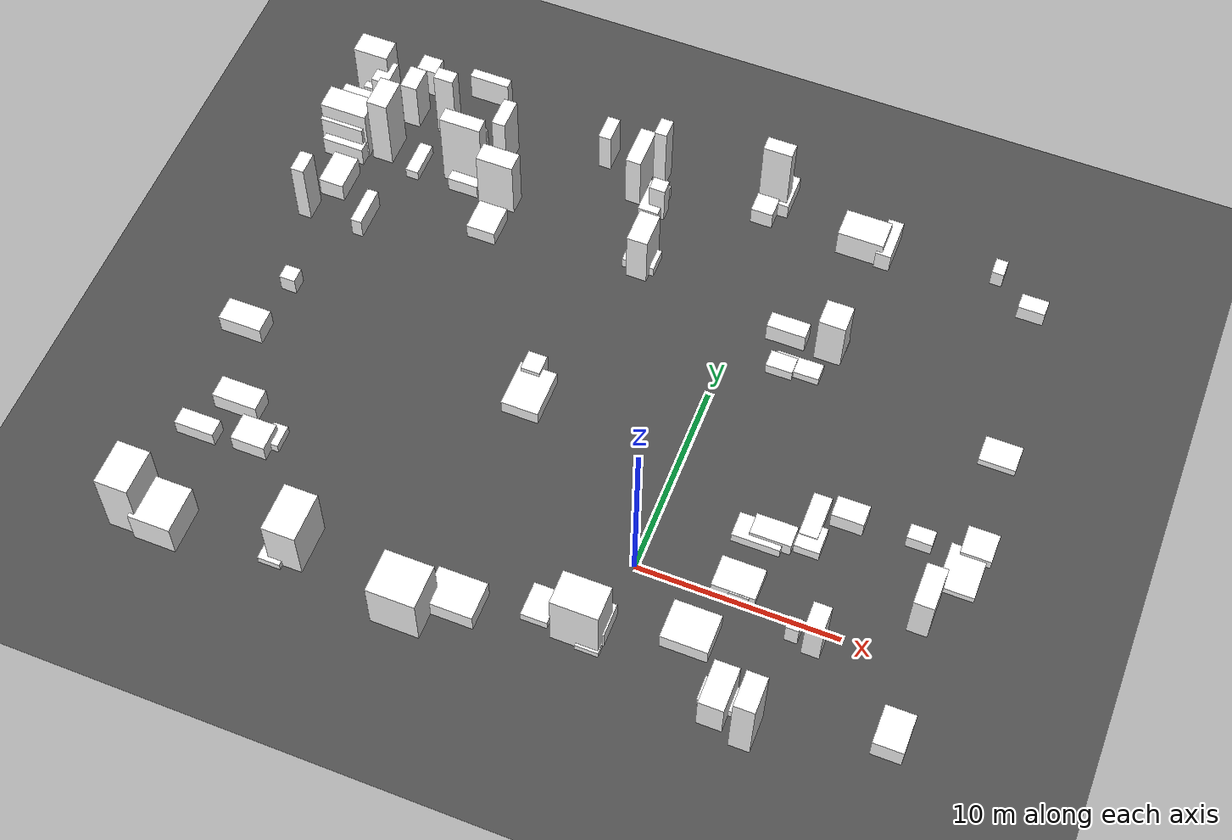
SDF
<sdf version="1.6">
 <world name="mirror_edge_world">
  <model name="ground_plane">
   <static>true</static>
   <link name="link">
    <collision name="collision">
     <geometry><plane><normal>0 0 1</normal><size>100 100</size></plane></geometry>
    </collision>
    <visual name="visual">
     <geometry><plane><normal>0 0 1</normal><size>100 100</size></plane></geometry>
     <material>
      <ambient>0.3 0.3 0.3 1</ambient>
      <diffuse>0.3 0.3 0.3 1</diffuse>
      <specular>0.5 0.5 0.5 1</specular>
      <emissive>0 0 0 1</emissive>
     </material>
    </visual>
   </link>
  </model>
  <model name="block_22_15">
   <static>true</static>
   <link name="link">
    <pose>-17.000234005314002 23.151503655592727 0.8291976811710926 0 0 0</pose>
    <visual name="visual">
     <geometry><box><size>2.1081253737532113 0.5332935228737214 1.6583953623421852</size></box></geometry>
     <material>
      <ambient>1 1 1 1</ambient>
      <diffuse>1 1 1 1</diffuse>
      <specular>0.9 0.9 0.9 1</specular>
      <emissive>0.05 0.05 0.05 1</emissive>
     </material>
    </visual>
   </link>
  </model>
  <model name="block_22_17">
   <static>true</static>
   <link name="link">
    <pose>8.929823135290668 -0.7346215140282037 1.5350440436905122 0 0 0</pose>
    <visual name="visual">
     <geometry><box><size>0.8731957604798097 1.1311284359588543 3.0700880873810243</size></box></geometry>
     <material>
      <ambient>1 1 1 1</ambient>
      <diffuse>1 1 1 1</diffuse>
      <specular>0.9 0.9 0.9 1</specular>
      <emissive>0.05 0.05 0.05 1</emissive>
     </material>
    </visual>
   </link>
  </model>
  <model name="block_22_19">
   <static>true</static>
   <link name="link">
    <pose>-15.93862999866603 17.135351204477825 0.4428532323656151 0 0 0</pose>
    <collision name="collision">
     <geometry><box><size>1.6153236331393863 0.6498136035347926 0.8857064647312302</size></box></geometry>
    </collision>
    <visual name="visual">
     <geometry><box><size>1.6153236331393863 0.6498136035347926 0.8857064647312302</size></box></geometry>
     <material>
      <ambient>1 1 1 1</ambient>
      <diffuse>1 1 1 1</diffuse>
      <specular>0.9 0.9 0.9 1</specular>
      <emissive>0.05 0.05 0.05 1</emissive>
     </material>
    </visual>
   </link>
  </model>
  <model name="block_22_21">
   <static>true</static>
   <link name="link">
    <pose>-21.843544677904646 20.14916607554263 1.2106739626028207 0 0 0</pose>
    <visual name="visual">
     <geometry><box><size>1.5672150394631863 1.0250472538898132 2.4213479252056413</size></box></geometry>
     <material>
      <ambient>1 1 1 1</ambient>
      <diffuse>1 1 1 1</diffuse>
      <specular>0.9 0.9 0.9 1</specular>
      <emissive>0.05 0.05 0.05 1</emissive>
     </material>
    </visual>
   </link>
  </model>
  <model name="block_22_22">
   <static>true</static>
   <link name="link">
    <pose>-22.64348056393818 17.87246046536137 1.5644742862348897 0 0 0</pose>
    <visual name="visual">
     <geometry><box><size>2.462194385708914 1.2963764707835144 3.1289485724697794</size></box></geometry>
     <material>
      <ambient>1 1 1 1</ambient>
      <diffuse>1 1 1 1</diffuse>
      <specular>0.9 0.9 0.9 1</specular>
      <emissive>0.05 0.05 0.05 1</emissive>
     </material>
    </visual>
   </link>
  </model>
  <model name="block_22_23">
   <static>true</static>
   <link name="link">
    <pose>-8.328093363064037 8.003436486961313 0.5330275454225023 0 0 0</pose>
    <collision name="collision">
     <geometry><box><size>0.9833024399908594 1.0585299187271155 1.0660550908450046</size></box></geometry>
    </collision>
    <visual name="visual">
     <geometry><box><size>0.9833024399908594 1.0585299187271155 1.0660550908450046</size></box></geometry>
     <material>
      <ambient>1 1 1 1</ambient>
      <diffuse>1 1 1 1</diffuse>
      <specular>0.9 0.9 0.9 1</specular>
      <emissive>0.05 0.05 0.05 1</emissive>
     </material>
    </visual>
   </link>
  </model>
  <model name="block_22_25">
   <static>true</static>
   <link name="link">
    <pose>-0.8925508427760995 -3.4618450347601395 0.5419465382859462 0 0 0</pose>
    <collision name="collision">
     <geometry><box><size>2.0434800334901304 1.6659194180426233 1.0838930765718924</size></box></geometry>
    </collision>
    <visual name="visual">
     <geometry><box><size>2.0434800334901304 1.6659194180426233 1.0838930765718924</size></box></geometry>
     <material>
      <ambient>1 1 1 1</ambient>
      <diffuse>1 1 1 1</diffuse>
      <specular>0.9 0.9 0.9 1</specular>
      <emissive>0.05 0.05 0.05 1</emissive>
     </material>
    </visual>
   </link>
  </model>
  <model name="block_22_26">
   <static>true</static>
   <link name="link">
    <pose>-0.8496635851406786 22.06602640856944 2.3534396287958836 0 0 0</pose>
    <visual name="visual">
     <geometry><box><size>1.4958335658438076 0.7745230680056694 4.706879257591767</size></box></geometry>
     <material>
      <ambient>1 1 1 1</ambient>
      <diffuse>1 1 1 1</diffuse>
      <specular>0.9 0.9 0.9 1</specular>
      <emissive>0.05 0.05 0.05 1</emissive>
     </material>
    </visual>
   </link>
  </model>
  <model name="block_22_28">
   <static>true</static>
   <link name="link">
    <pose>-7.647182800005197 20.590743466802042 1.6566008447092133 0 0 0</pose>
    <visual name="visual">
     <geometry><box><size>0.8026211653399886 2.191883970873061 3.3132016894184266</size></box></geometry>
     <material>
      <ambient>1 1 1 1</ambient>
      <diffuse>1 1 1 1</diffuse>
      <specular>0.9 0.9 0.9 1</specular>
      <emissive>0.05 0.05 0.05 1</emissive>
     </material>
    </visual>
   </link>
  </model>
  <model name="block_22_30">
   <static>true</static>
   <link name="link">
    <pose>-18.350507225957326 0.02275497186014963 0.2632655990112833 0 0 0</pose>
    <collision name="collision">
     <geometry><box><size>0.7142455852179146 1.1684648181235442 0.5265311980225666</size></box></geometry>
    </collision>
    <visual name="visual">
     <geometry><box><size>0.7142455852179146 1.1684648181235442 0.5265311980225666</size></box></geometry>
     <material>
      <ambient>1 1 1 1</ambient>
      <diffuse>1 1 1 1</diffuse>
      <specular>0.9 0.9 0.9 1</specular>
      <emissive>0.05 0.05 0.05 1</emissive>
     </material>
    </visual>
   </link>
  </model>
  <model name="block_22_35">
   <static>true</static>
   <link name="link">
    <pose>-15.024641903932089 -4.709595337536841 1.564188024645019 0 0 0</pose>
    <visual name="visual">
     <geometry><box><size>1.6839800793992639 2.4764968950045505 3.128376049290038</size></box></geometry>
     <material>
      <ambient>1 1 1 1</ambient>
      <diffuse>1 1 1 1</diffuse>
      <specular>0.9 0.9 0.9 1</specular>
      <emissive>0.05 0.05 0.05 1</emissive>
     </material>
    </visual>
   </link>
  </model>
  <model name="block_22_36">
   <static>true</static>
   <link name="link">
    <pose>-5.7750880602620995 16.052617336425623 1.5689275248770598 0 0 0</pose>
    <visual name="visual">
     <geometry><box><size>1.0708895241608742 1.8267220241673692 3.1378550497541196</size></box></geometry>
     <material>
      <ambient>1 1 1 1</ambient>
      <diffuse>1 1 1 1</diffuse>
      <specular>0.9 0.9 0.9 1</specular>
      <emissive>0.05 0.05 0.05 1</emissive>
     </material>
    </visual>
   </link>
  </model>
  <model name="block_22_38">
   <static>true</static>
   <link name="link">
    <pose>13.236804835776205 20.30453709354527 0.4512909101846954 0 0 0</pose>
    <collision name="collision">
     <geometry><box><size>1.3643853348768828 0.8567791760035446 0.9025818203693908</size></box></geometry>
    </collision>
    <visual name="visual">
     <geometry><box><size>1.3643853348768828 0.8567791760035446 0.9025818203693908</size></box></geometry>
     <material>
      <ambient>1 1 1 1</ambient>
      <diffuse>1 1 1 1</diffuse>
      <specular>0.9 0.9 0.9 1</specular>
      <emissive>0.05 0.05 0.05 1</emissive>
     </material>
    </visual>
   </link>
  </model>
  <model name="block_22_39">
   <static>true</static>
   <link name="link">
    <pose>-18.75826527438164 17.687866649953136 0.30002169895415737 0 0 0</pose>
    <collision name="collision">
     <geometry><box><size>0.6781452835375466 1.873353465759891 0.6000433979083147</size></box></geometry>
    </collision>
    <visual name="visual">
     <geometry><box><size>0.6781452835375466 1.873353465759891 0.6000433979083147</size></box></geometry>
     <material>
      <ambient>1 1 1 1</ambient>
      <diffuse>1 1 1 1</diffuse>
      <specular>0.9 0.9 0.9 1</specular>
      <emissive>0.05 0.05 0.05 1</emissive>
     </material>
    </visual>
   </link>
  </model>
  <model name="block_22_40">
   <static>true</static>
   <link name="link">
    <pose>-20.818517922348953 1.1912946461847138 0.5382991693496486 0 0 0</pose>
    <collision name="collision">
     <geometry><box><size>2.29716130727563 1.1516442796876392 1.0765983386992972</size></box></geometry>
    </collision>
    <visual name="visual">
     <geometry><box><size>2.29716130727563 1.1516442796876392 1.0765983386992972</size></box></geometry>
     <material>
      <ambient>1 1 1 1</ambient>
      <diffuse>1 1 1 1</diffuse>
      <specular>0.9 0.9 0.9 1</specular>
      <emissive>0.05 0.05 0.05 1</emissive>
     </material>
    </visual>
   </link>
  </model>
  <model name="block_22_41">
   <static>true</static>
   <link name="link">
    <pose>6.191400846187118 -4.785770294530913 0.2578104254933151 0 0 0</pose>
    <collision name="collision">
     <geometry><box><size>2.4266096442871024 1.2365595490808343 0.5156208509866302</size></box></geometry>
    </collision>
    <visual name="visual">
     <geometry><box><size>2.4266096442871024 1.2365595490808343 0.5156208509866302</size></box></geometry>
     <material>
      <ambient>1 1 1 1</ambient>
      <diffuse>1 1 1 1</diffuse>
      <specular>0.9 0.9 0.9 1</specular>
      <emissive>0.05 0.05 0.05 1</emissive>
     </material>
    </visual>
   </link>
  </model>
  <model name="block_22_48">
   <static>true</static>
   <link name="link">
    <pose>-6.766043212063472 21.483906034129046 2.1061594983537337 0 0 0</pose>
    <visual name="visual">
     <geometry><box><size>0.643334658704996 1.0118557282227623 4.2123189967074675</size></box></geometry>
     <material>
      <ambient>1 1 1 1</ambient>
      <diffuse>1 1 1 1</diffuse>
      <specular>0.9 0.9 0.9 1</specular>
      <emissive>0.05 0.05 0.05 1</emissive>
     </material>
    </visual>
   </link>
  </model>
  <model name="block_22_51">
   <static>true</static>
   <link name="link">
    <pose>-6.472140873873997 19.565524889428584 0.4584609084882674 0 0 0</pose>
    <collision name="collision">
     <geometry><box><size>1.0845054863842325 1.9096257418806577 0.9169218169765349</size></box></geometry>
    </collision>
    <visual name="visual">
     <geometry><box><size>1.0845054863842325 1.9096257418806577 0.9169218169765349</size></box></geometry>
     <material>
      <ambient>1 1 1 1</ambient>
      <diffuse>1 1 1 1</diffuse>
      <specular>0.9 0.9 0.9 1</specular>
      <emissive>0.05 0.05 0.05 1</emissive>
     </material>
    </visual>
   </link>
  </model>
  <model name="block_22_54">
   <static>true</static>
   <link name="link">
    <pose>-20.218501857559882 20.649050348204295 1.5117332322280095 0 0 0</pose>
    <visual name="visual">
     <geometry><box><size>0.8849673531268611 1.3532489394996594 3.023466464456019</size></box></geometry>
     <material>
      <ambient>1 1 1 1</ambient>
      <diffuse>1 1 1 1</diffuse>
      <specular>0.9 0.9 0.9 1</specular>
      <emissive>0.05 0.05 0.05 1</emissive>
     </material>
    </visual>
   </link>
  </model>
  <model name="block_22_55">
   <static>true</static>
   <link name="link">
    <pose>-19.240809249943247 -0.45671272172578004 0.5000218207108804 0 0 0</pose>
    <visual name="visual">
     <geometry><box><size>1.7454724467498697 1.411799317731535 1.0000436414217608</size></box></geometry>
     <material>
      <ambient>1 1 1 1</ambient>
      <diffuse>1 1 1 1</diffuse>
      <specular>0.9 0.9 0.9 1</specular>
      <emissive>0.05 0.05 0.05 1</emissive>
     </material>
    </visual>
   </link>
  </model>
  <model name="block_22_57">
   <static>true</static>
   <link name="link">
    <pose>-8.05568887673745 6.706339004211443 0.4115748227998906 0 0 0</pose>
    <collision name="collision">
     <geometry><box><size>1.9036529005885172 2.4846210266897097 0.8231496455997812</size></box></geometry>
    </collision>
    <visual name="visual">
     <geometry><box><size>1.9036529005885172 2.4846210266897097 0.8231496455997812</size></box></geometry>
     <material>
      <ambient>1 1 1 1</ambient>
      <diffuse>1 1 1 1</diffuse>
      <specular>0.9 0.9 0.9 1</specular>
      <emissive>0.05 0.05 0.05 1</emissive>
     </material>
    </visual>
   </link>
  </model>
  <model name="block_22_59">
   <static>true</static>
   <link name="link">
    <pose>4.8276143278347945 3.5502489096451972 0.3009992216690628 0 0 0</pose>
    <collision name="collision">
     <geometry><box><size>2.38236684214409 1.2839924231989783 0.6019984433381256</size></box></geometry>
    </collision>
    <visual name="visual">
     <geometry><box><size>2.38236684214409 1.2839924231989783 0.6019984433381256</size></box></geometry>
     <material>
      <ambient>1 1 1 1</ambient>
      <diffuse>1 1 1 1</diffuse>
      <specular>0.9 0.9 0.9 1</specular>
      <emissive>0.05 0.05 0.05 1</emissive>
     </material>
    </visual>
   </link>
  </model>
  <model name="block_22_60">
   <static>true</static>
   <link name="link">
    <pose>4.675404943080892 14.64516064141878 1.5510533394284112 0 0 0</pose>
    <visual name="visual">
     <geometry><box><size>1.3649034362786985 1.383448371381654 3.1021066788568223</size></box></geometry>
     <material>
      <ambient>1 1 1 1</ambient>
      <diffuse>1 1 1 1</diffuse>
      <specular>0.9 0.9 0.9 1</specular>
      <emissive>0.05 0.05 0.05 1</emissive>
     </material>
    </visual>
   </link>
  </model>
  <model name="block_22_61">
   <static>true</static>
   <link name="link">
    <pose>-21.605561472953077 8.434349587030962 0.5131581377539682 0 0 0</pose>
    <collision name="collision">
     <geometry><box><size>0.8216472086989302 0.7923148250442 1.0263162755079365</size></box></geometry>
    </collision>
    <visual name="visual">
     <geometry><box><size>0.8216472086989302 0.7923148250442 1.0263162755079365</size></box></geometry>
     <material>
      <ambient>1 1 1 1</ambient>
      <diffuse>1 1 1 1</diffuse>
      <specular>0.9 0.9 0.9 1</specular>
      <emissive>0.05 0.05 0.05 1</emissive>
     </material>
    </visual>
   </link>
  </model>
  <model name="block_22_63">
   <static>true</static>
   <link name="link">
    <pose>-22.579469372061762 17.276765629977145 0.5709187094488384 0 0 0</pose>
    <visual name="visual">
     <geometry><box><size>2.1973928382070764 1.308899670762785 1.1418374188976768</size></box></geometry>
     <material>
      <ambient>1 1 1 1</ambient>
      <diffuse>1 1 1 1</diffuse>
      <specular>0.9 0.9 0.9 1</specular>
      <emissive>0.05 0.05 0.05 1</emissive>
     </material>
    </visual>
   </link>
  </model>
  <model name="block_22_64">
   <static>true</static>
   <link name="link">
    <pose>13.081695450578671 2.597744093056316 1.3970260148181197 0 0 0</pose>
    <visual name="visual">
     <geometry><box><size>1.007919280714147 2.1552144270034415 2.7940520296362394</size></box></geometry>
     <material>
      <ambient>1 1 1 1</ambient>
      <diffuse>1 1 1 1</diffuse>
      <specular>0.9 0.9 0.9 1</specular>
      <emissive>0.05 0.05 0.05 1</emissive>
     </material>
    </visual>
   </link>
  </model>
  <model name="block_22_65">
   <static>true</static>
   <link name="link">
    <pose>-0.456181306174841 22.448035728683372 0.46651754602988615 0 0 0</pose>
    <collision name="collision">
     <geometry><box><size>1.045367142561087 1.9812650053070189 0.9330350920597723</size></box></geometry>
    </collision>
    <visual name="visual">
     <geometry><box><size>1.045367142561087 1.9812650053070189 0.9330350920597723</size></box></geometry>
     <material>
      <ambient>1 1 1 1</ambient>
      <diffuse>1 1 1 1</diffuse>
      <specular>0.9 0.9 0.9 1</specular>
      <emissive>0.05 0.05 0.05 1</emissive>
     </material>
    </visual>
   </link>
  </model>
  <model name="block_23_0">
   <static>true</static>
   <link name="link">
    <pose>-14.015464459498707 17.163469232135203 1.7820553699140058 0 0 0</pose>
    <visual name="visual">
     <geometry><box><size>1.948100029908079 1.0177017978049798 3.5641107398280116</size></box></geometry>
     <material>
      <ambient>1 1 1 1</ambient>
      <diffuse>1 1 1 1</diffuse>
      <specular>0.9 0.9 0.9 1</specular>
      <emissive>0.05 0.05 0.05 1</emissive>
     </material>
    </visual>
   </link>
  </model>
  <model name="block_23_1">
   <static>true</static>
   <link name="link">
    <pose>-20.656592037979554 18.133253136462713 2.2312030416786235 0 0 0</pose>
    <visual name="visual">
     <geometry><box><size>1.076337487844803 1.7249178683879753 4.462406083357247</size></box></geometry>
     <material>
      <ambient>1 1 1 1</ambient>
      <diffuse>1 1 1 1</diffuse>
      <specular>0.9 0.9 0.9 1</specular>
      <emissive>0.05 0.05 0.05 1</emissive>
     </material>
    </visual>
   </link>
  </model>
  <model name="block_23_5">
   <static>true</static>
   <link name="link">
    <pose>11.088158263672504 21.82186820460847 0.4859775302198316 0 0 0</pose>
    <collision name="collision">
     <geometry><box><size>0.6176570113009354 0.8930886383661172 0.9719550604396632</size></box></geometry>
    </collision>
    <visual name="visual">
     <geometry><box><size>0.6176570113009354 0.8930886383661172 0.9719550604396632</size></box></geometry>
     <material>
      <ambient>1 1 1 1</ambient>
      <diffuse>1 1 1 1</diffuse>
      <specular>0.9 0.9 0.9 1</specular>
      <emissive>0.05 0.05 0.05 1</emissive>
     </material>
    </visual>
   </link>
  </model>
  <model name="block_23_6">
   <static>true</static>
   <link name="link">
    <pose>-19.863547800143262 13.458338002693985 0.5941954074495939 0 0 0</pose>
    <collision name="collision">
     <geometry><box><size>0.573146718350213 2.0643392455595535 1.1883908148991877</size></box></geometry>
    </collision>
    <visual name="visual">
     <geometry><box><size>0.573146718350213 2.0643392455595535 1.1883908148991877</size></box></geometry>
     <material>
      <ambient>1 1 1 1</ambient>
      <diffuse>1 1 1 1</diffuse>
      <specular>0.9 0.9 0.9 1</specular>
      <emissive>0.05 0.05 0.05 1</emissive>
     </material>
    </visual>
   </link>
  </model>
  <model name="block_23_8">
   <static>true</static>
   <link name="link">
    <pose>4.800437768148051 14.29712897859223 0.5913674944365421 0 0 0</pose>
    <collision name="collision">
     <geometry><box><size>0.7557320185252028 0.6103232135028718 1.1827349888730843</size></box></geometry>
    </collision>
    <visual name="visual">
     <geometry><box><size>0.7557320185252028 0.6103232135028718 1.1827349888730843</size></box></geometry>
     <material>
      <ambient>1 1 1 1</ambient>
      <diffuse>1 1 1 1</diffuse>
      <specular>0.9 0.9 0.9 1</specular>
      <emissive>0.05 0.05 0.05 1</emissive>
     </material>
    </visual>
   </link>
  </model>
  <model name="block_23_9">
   <static>true</static>
   <link name="link">
    <pose>-2.0570469535750746 -3.1329856949663983 0.24667355671066682 0 0 0</pose>
    <collision name="collision">
     <geometry><box><size>0.7644283390961051 1.6153249072419167 0.49334711342133364</size></box></geometry>
    </collision>
    <visual name="visual">
     <geometry><box><size>0.7644283390961051 1.6153249072419167 0.49334711342133364</size></box></geometry>
     <material>
      <ambient>1 1 1 1</ambient>
      <diffuse>1 1 1 1</diffuse>
      <specular>0.9 0.9 0.9 1</specular>
      <emissive>0.05 0.05 0.05 1</emissive>
     </material>
    </visual>
   </link>
  </model>
  <model name="block_23_12">
   <static>true</static>
   <link name="link">
    <pose>-9.795415245919536 21.758974138465277 1.211655233935592 0 0 0</pose>
    <visual name="visual">
     <geometry><box><size>0.6631234790393878 1.377676256495267 2.423310467871184</size></box></geometry>
     <material>
      <ambient>1 1 1 1</ambient>
      <diffuse>1 1 1 1</diffuse>
      <specular>0.9 0.9 0.9 1</specular>
      <emissive>0.05 0.05 0.05 1</emissive>
     </material>
    </visual>
   </link>
  </model>
  <model name="block_23_13">
   <static>true</static>
   <link name="link">
    <pose>-16.28324859383941 18.8806069047481 1.1867411544370061 0 0 0</pose>
    <visual name="visual">
     <geometry><box><size>1.4557059414431701 1.016152219807863 2.3734823088740122</size></box></geometry>
     <material>
      <ambient>1 1 1 1</ambient>
      <diffuse>1 1 1 1</diffuse>
      <specular>0.9 0.9 0.9 1</specular>
      <emissive>0.05 0.05 0.05 1</emissive>
     </material>
    </visual>
   </link>
  </model>
  <model name="block_23_17">
   <static>true</static>
   <link name="link">
    <pose>-6.935643530448516 -4.736055111415524 0.5242083380881772 0 0 0</pose>
    <collision name="collision">
     <geometry><box><size>2.451017681744493 1.918097508944762 1.0484166761763545</size></box></geometry>
    </collision>
    <visual name="visual">
     <geometry><box><size>2.451017681744493 1.918097508944762 1.0484166761763545</size></box></geometry>
     <material>
      <ambient>1 1 1 1</ambient>
      <diffuse>1 1 1 1</diffuse>
      <specular>0.9 0.9 0.9 1</specular>
      <emissive>0.05 0.05 0.05 1</emissive>
     </material>
    </visual>
   </link>
  </model>
  <model name="block_23_18">
   <static>true</static>
   <link name="link">
    <pose>-1.1256112647734895 -3.9151071410197074 1.7670080264445567 0 0 0</pose>
    <visual name="visual">
     <geometry><box><size>2.3455979890117984 1.7071481576778824 3.5340160528891134</size></box></geometry>
     <material>
      <ambient>1 1 1 1</ambient>
      <diffuse>1 1 1 1</diffuse>
      <specular>0.9 0.9 0.9 1</specular>
      <emissive>0.05 0.05 0.05 1</emissive>
     </material>
    </visual>
   </link>
  </model>
  <model name="block_23_20">
   <static>true</static>
   <link name="link">
    <pose>2.439762722728549 14.55163029500575 0.5726351383816564 0 0 0</pose>
    <collision name="collision">
     <geometry><box><size>2.000138759565127 0.8652535220200308 1.1452702767633127</size></box></geometry>
    </collision>
    <visual name="visual">
     <geometry><box><size>2.000138759565127 0.8652535220200308 1.1452702767633127</size></box></geometry>
     <material>
      <ambient>1 1 1 1</ambient>
      <diffuse>1 1 1 1</diffuse>
      <specular>0.9 0.9 0.9 1</specular>
      <emissive>0.05 0.05 0.05 1</emissive>
     </material>
    </visual>
   </link>
  </model>
  <model name="block_23_22">
   <static>true</static>
   <link name="link">
    <pose>-22.242996858572333 20.616036300524332 2.3391263338352077 0 0 0</pose>
    <visual name="visual">
     <geometry><box><size>1.820074386296676 1.1667413450130737 4.6782526676704155</size></box></geometry>
     <material>
      <ambient>1 1 1 1</ambient>
      <diffuse>1 1 1 1</diffuse>
      <specular>0.9 0.9 0.9 1</specular>
      <emissive>0.05 0.05 0.05 1</emissive>
     </material>
    </visual>
   </link>
  </model>
  <model name="block_23_25">
   <static>true</static>
   <link name="link">
    <pose>4.999905655071295 0.5653381143522047 0.2729887742222651 0 0 0</pose>
    <collision name="collision">
     <geometry><box><size>0.973325900653355 0.994726292635205 0.5459775484445302</size></box></geometry>
    </collision>
    <visual name="visual">
     <geometry><box><size>0.973325900653355 0.994726292635205 0.5459775484445302</size></box></geometry>
     <material>
      <ambient>1 1 1 1</ambient>
      <diffuse>1 1 1 1</diffuse>
      <specular>0.9 0.9 0.9 1</specular>
      <emissive>0.05 0.05 0.05 1</emissive>
     </material>
    </visual>
   </link>
  </model>
  <model name="block_23_26">
   <static>true</static>
   <link name="link">
    <pose>8.447384683402007 5.923438932733853 0.502741983072199 0 0 0</pose>
    <collision name="collision">
     <geometry><box><size>1.5984683441291325 1.085529438213787 1.005483966144398</size></box></geometry>
    </collision>
    <visual name="visual">
     <geometry><box><size>1.5984683441291325 1.085529438213787 1.005483966144398</size></box></geometry>
     <material>
      <ambient>1 1 1 1</ambient>
      <diffuse>1 1 1 1</diffuse>
      <specular>0.9 0.9 0.9 1</specular>
      <emissive>0.05 0.05 0.05 1</emissive>
     </material>
    </visual>
   </link>
  </model>
  <model name="block_23_27">
   <static>true</static>
   <link name="link">
    <pose>-21.158757028655018 -5.964724360653608 1.0086970827723332 0 0 0</pose>
    <visual name="visual">
     <geometry><box><size>2.128364193853981 2.368373551903538 2.0173941655446663</size></box></geometry>
     <material>
      <ambient>1 1 1 1</ambient>
      <diffuse>1 1 1 1</diffuse>
      <specular>0.9 0.9 0.9 1</specular>
      <emissive>0.05 0.05 0.05 1</emissive>
     </material>
    </visual>
   </link>
  </model>
  <model name="block_23_33">
   <static>true</static>
   <link name="link">
    <pose>13.592665783605476 -3.822629772059053 0.6096975895320262 0 0 0</pose>
    <visual name="visual">
     <geometry><box><size>1.4751271855683366 1.9491888655089564 1.2193951790640525</size></box></geometry>
     <material>
      <ambient>1 1 1 1</ambient>
      <diffuse>1 1 1 1</diffuse>
      <specular>0.9 0.9 0.9 1</specular>
      <emissive>0.05 0.05 0.05 1</emissive>
     </material>
    </visual>
   </link>
  </model>
  <model name="block_23_34">
   <static>true</static>
   <link name="link">
    <pose>-22.471016279331703 18.700802252942125 1.231193562337165 0 0 0</pose>
    <visual name="visual">
     <geometry><box><size>2.1485420312011634 1.5092288581458255 2.46238712467433</size></box></geometry>
     <material>
      <ambient>1 1 1 1</ambient>
      <diffuse>1 1 1 1</diffuse>
      <specular>0.9 0.9 0.9 1</specular>
      <emissive>0.05 0.05 0.05 1</emissive>
     </material>
    </visual>
   </link>
  </model>
  <model name="block_23_35">
   <static>true</static>
   <link name="link">
    <pose>11.863428941938835 6.034507453346973 0.4028168333732716 0 0 0</pose>
    <collision name="collision">
     <geometry><box><size>1.2383942720324863 0.782803636157237 0.8056336667465432</size></box></geometry>
    </collision>
    <visual name="visual">
     <geometry><box><size>1.2383942720324863 0.782803636157237 0.8056336667465432</size></box></geometry>
     <material>
      <ambient>1 1 1 1</ambient>
      <diffuse>1 1 1 1</diffuse>
      <specular>0.9 0.9 0.9 1</specular>
      <emissive>0.05 0.05 0.05 1</emissive>
     </material>
    </visual>
   </link>
  </model>
  <model name="block_23_37">
   <static>true</static>
   <link name="link">
    <pose>6.981715861300987 5.252454787831 0.33370475964791385 0 0 0</pose>
    <collision name="collision">
     <geometry><box><size>0.9175770225888724 2.303026604035254 0.6674095192958277</size></box></geometry>
    </collision>
    <visual name="visual">
     <geometry><box><size>0.9175770225888724 2.303026604035254 0.6674095192958277</size></box></geometry>
     <material>
      <ambient>1 1 1 1</ambient>
      <diffuse>1 1 1 1</diffuse>
      <specular>0.9 0.9 0.9 1</specular>
      <emissive>0.05 0.05 0.05 1</emissive>
     </material>
    </visual>
   </link>
  </model>
  <model name="block_23_41">
   <static>true</static>
   <link name="link">
    <pose>14.065105564563595 11.791268914291745 0.2186040836923493 0 0 0</pose>
    <collision name="collision">
     <geometry><box><size>1.8392236603474834 1.380914900031973 0.4372081673846986</size></box></geometry>
    </collision>
    <visual name="visual">
     <geometry><box><size>1.8392236603474834 1.380914900031973 0.4372081673846986</size></box></geometry>
     <material>
      <ambient>1 1 1 1</ambient>
      <diffuse>1 1 1 1</diffuse>
      <specular>0.9 0.9 0.9 1</specular>
      <emissive>0.05 0.05 0.05 1</emissive>
     </material>
    </visual>
   </link>
  </model>
  <model name="block_23_47">
   <static>true</static>
   <link name="link">
    <pose>2.7459976855011448 12.720783258231101 0.322009754036798 0 0 0</pose>
    <collision name="collision">
     <geometry><box><size>1.3594382433018604 0.913524030574409 0.644019508073596</size></box></geometry>
    </collision>
    <visual name="visual">
     <geometry><box><size>1.3594382433018604 0.913524030574409 0.644019508073596</size></box></geometry>
     <material>
      <ambient>1 1 1 1</ambient>
      <diffuse>1 1 1 1</diffuse>
      <specular>0.9 0.9 0.9 1</specular>
      <emissive>0.05 0.05 0.05 1</emissive>
     </material>
    </visual>
   </link>
  </model>
  <model name="block_23_51">
   <static>true</static>
   <link name="link">
    <pose>-15.73072470934771 -5.25961099699636 0.20886380446722802 0 0 0</pose>
    <collision name="collision">
     <geometry><box><size>1.125416380127507 1.8580957272311405 0.41772760893445604</size></box></geometry>
    </collision>
    <visual name="visual">
     <geometry><box><size>1.125416380127507 1.8580957272311405 0.41772760893445604</size></box></geometry>
     <material>
      <ambient>1 1 1 1</ambient>
      <diffuse>1 1 1 1</diffuse>
      <specular>0.9 0.9 0.9 1</specular>
      <emissive>0.05 0.05 0.05 1</emissive>
     </material>
    </visual>
   </link>
  </model>
  <model name="block_23_53">
   <static>true</static>
   <link name="link">
    <pose>-22.80300700358569 -5.796282326282243 2.0094575808904604 0 0 0</pose>
    <visual name="visual">
     <geometry><box><size>1.6734800139349428 2.304906544928648 4.018915161780921</size></box></geometry>
     <material>
      <ambient>1 1 1 1</ambient>
      <diffuse>1 1 1 1</diffuse>
      <specular>0.9 0.9 0.9 1</specular>
      <emissive>0.05 0.05 0.05 1</emissive>
     </material>
    </visual>
   </link>
  </model>
  <model name="block_23_54">
   <static>true</static>
   <link name="link">
    <pose>-16.14991549217732 17.775625871690636 2.3845869756656444 0 0 0</pose>
    <visual name="visual">
     <geometry><box><size>2.1620375516640262 0.7907372227758014 4.769173951331289</size></box></geometry>
     <material>
      <ambient>1 1 1 1</ambient>
      <diffuse>1 1 1 1</diffuse>
      <specular>0.9 0.9 0.9 1</specular>
      <emissive>0.05 0.05 0.05 1</emissive>
     </material>
    </visual>
   </link>
  </model>
  <model name="block_23_56">
   <static>true</static>
   <link name="link">
    <pose>7.884919242570337 -0.646020087013996 0.6248348661011349 0 0 0</pose>
    <visual name="visual">
     <geometry><box><size>0.6354666772787183 0.6352702688847587 1.2496697322022698</size></box></geometry>
     <material>
      <ambient>1 1 1 1</ambient>
      <diffuse>1 1 1 1</diffuse>
      <specular>0.9 0.9 0.9 1</specular>
      <emissive>0.05 0.05 0.05 1</emissive>
     </material>
    </visual>
   </link>
  </model>
  <model name="block_23_59">
   <static>true</static>
   <link name="link">
    <pose>14.512402608223177 6.693027400641085 0.28905650678810907 0 0 0</pose>
    <collision name="collision">
     <geometry><box><size>1.5258267510735015 1.4935348104473014 0.5781130135762181</size></box></geometry>
    </collision>
    <visual name="visual">
     <geometry><box><size>1.5258267510735015 1.4935348104473014 0.5781130135762181</size></box></geometry>
     <material>
      <ambient>1 1 1 1</ambient>
      <diffuse>1 1 1 1</diffuse>
      <specular>0.9 0.9 0.9 1</specular>
      <emissive>0.05 0.05 0.05 1</emissive>
     </material>
    </visual>
   </link>
  </model>
  <model name="block_23_60">
   <static>true</static>
   <link name="link">
    <pose>3.5348726399470713 12.933995396972296 0.24188977557412428 0 0 0</pose>
    <collision name="collision">
     <geometry><box><size>2.356904855537839 0.9101904225910806 0.48377955114824855</size></box></geometry>
    </collision>
    <visual name="visual">
     <geometry><box><size>2.356904855537839 0.9101904225910806 0.48377955114824855</size></box></geometry>
     <material>
      <ambient>1 1 1 1</ambient>
      <diffuse>1 1 1 1</diffuse>
      <specular>0.9 0.9 0.9 1</specular>
      <emissive>0.05 0.05 0.05 1</emissive>
     </material>
    </visual>
   </link>
  </model>
  <model name="block_23_61">
   <static>true</static>
   <link name="link">
    <pose>-13.915084874462938 15.275548501049677 0.43477131211643816 0 0 0</pose>
    <collision name="collision">
     <geometry><box><size>1.5060745829001518 1.7139786697183779 0.8695426242328763</size></box></geometry>
    </collision>
    <visual name="visual">
     <geometry><box><size>1.5060745829001518 1.7139786697183779 0.8695426242328763</size></box></geometry>
     <material>
      <ambient>1 1 1 1</ambient>
      <diffuse>1 1 1 1</diffuse>
      <specular>0.9 0.9 0.9 1</specular>
      <emissive>0.05 0.05 0.05 1</emissive>
     </material>
    </visual>
   </link>
  </model>
  <model name="block_23_62">
   <static>true</static>
   <link name="link">
    <pose>-18.254163878531607 20.460907058557243 2.1527672868640675 0 0 0</pose>
    <visual name="visual">
     <geometry><box><size>1.0451399130379566 0.7017316912761387 4.305534573728135</size></box></geometry>
     <material>
      <ambient>1 1 1 1</ambient>
      <diffuse>1 1 1 1</diffuse>
      <specular>0.9 0.9 0.9 1</specular>
      <emissive>0.05 0.05 0.05 1</emissive>
     </material>
    </visual>
   </link>
  </model>
  <model name="block_23_63">
   <static>true</static>
   <link name="link">
    <pose>4.715652403370186 0.9572432207698505 0.2916405176160963 0 0 0</pose>
    <collision name="collision">
     <geometry><box><size>2.165379753673678 1.621990674318613 0.5832810352321925</size></box></geometry>
    </collision>
    <visual name="visual">
     <geometry><box><size>2.165379753673678 1.621990674318613 0.5832810352321925</size></box></geometry>
     <material>
      <ambient>1 1 1 1</ambient>
      <diffuse>1 1 1 1</diffuse>
      <specular>0.9 0.9 0.9 1</specular>
      <emissive>0.05 0.05 0.05 1</emissive>
     </material>
    </visual>
   </link>
  </model>
  <model name="block_23_65">
   <static>true</static>
   <link name="link">
    <pose>3.5807330400035724 -2.3341948523273675 0.48301526128645084 0 0 0</pose>
    <collision name="collision">
     <geometry><box><size>2.3211810050875115 2.0005860934200763 0.9660305225729017</size></box></geometry>
    </collision>
    <visual name="visual">
     <geometry><box><size>2.3211810050875115 2.0005860934200763 0.9660305225729017</size></box></geometry>
     <material>
      <ambient>1 1 1 1</ambient>
      <diffuse>1 1 1 1</diffuse>
      <specular>0.9 0.9 0.9 1</specular>
      <emissive>0.05 0.05 0.05 1</emissive>
     </material>
    </visual>
   </link>
  </model>
  <model name="block_23_67">
   <static>true</static>
   <link name="link">
    <pose>-5.846712606082374 16.174091878589113 0.301547936676074 0 0 0</pose>
    <collision name="collision">
     <geometry><box><size>1.6868660183530286 1.1952224086770205 0.603095873352148</size></box></geometry>
    </collision>
    <visual name="visual">
     <geometry><box><size>1.6868660183530286 1.1952224086770205 0.603095873352148</size></box></geometry>
     <material>
      <ambient>1 1 1 1</ambient>
      <diffuse>1 1 1 1</diffuse>
      <specular>0.9 0.9 0.9 1</specular>
      <emissive>0.05 0.05 0.05 1</emissive>
     </material>
    </visual>
   </link>
  </model>
  <model name="block_24_0">
   <static>true</static>
   <link name="link">
    <pose>-22.076824938837543 15.11001624692215 0.5778559433233406 0 0 0</pose>
    <collision name="collision">
     <geometry><box><size>1.3137051301091274 1.9186388764363977 1.1557118866466811</size></box></geometry>
    </collision>
    <visual name="visual">
     <geometry><box><size>1.3137051301091274 1.9186388764363977 1.1557118866466811</size></box></geometry>
     <material>
      <ambient>1 1 1 1</ambient>
      <diffuse>1 1 1 1</diffuse>
      <specular>0.9 0.9 0.9 1</specular>
      <emissive>0.05 0.05 0.05 1</emissive>
     </material>
    </visual>
   </link>
  </model>
  <model name="block_24_1">
   <static>true</static>
   <link name="link">
    <pose>4.20007725041701 21.108954954738902 0.825240589075078 0 0 0</pose>
    <visual name="visual">
     <geometry><box><size>2.3703047200244503 1.5382818501396829 1.650481178150156</size></box></geometry>
     <material>
      <ambient>1 1 1 1</ambient>
      <diffuse>1 1 1 1</diffuse>
      <specular>0.9 0.9 0.9 1</specular>
      <emissive>0.05 0.05 0.05 1</emissive>
     </material>
    </visual>
   </link>
  </model>
  <model name="block_24_2">
   <static>true</static>
   <link name="link">
    <pose>-14.745316839927817 19.76904884113609 1.8516829867187268 0 0 0</pose>
    <visual name="visual">
     <geometry><box><size>0.7051513403734759 1.6254089073448943 3.7033659734374536</size></box></geometry>
     <material>
      <ambient>1 1 1 1</ambient>
      <diffuse>1 1 1 1</diffuse>
      <specular>0.9 0.9 0.9 1</specular>
      <emissive>0.05 0.05 0.05 1</emissive>
     </material>
    </visual>
   </link>
  </model>
  <model name="block_24_4">
   <static>true</static>
   <link name="link">
    <pose>-22.583194395216484 5.350757576471547 0.5357696256921629 0 0 0</pose>
    <collision name="collision">
     <geometry><box><size>2.2288031794795136 1.248956136431881 1.0715392513843258</size></box></geometry>
    </collision>
    <visual name="visual">
     <geometry><box><size>2.2288031794795136 1.248956136431881 1.0715392513843258</size></box></geometry>
     <material>
      <ambient>1 1 1 1</ambient>
      <diffuse>1 1 1 1</diffuse>
      <specular>0.9 0.9 0.9 1</specular>
      <emissive>0.05 0.05 0.05 1</emissive>
     </material>
    </visual>
   </link>
  </model>
  <model name="block_24_5">
   <static>true</static>
   <link name="link">
    <pose>-21.486189826023892 20.01331244290986 1.8336622126450017 0 0 0</pose>
    <visual name="visual">
     <geometry><box><size>0.8912909402135043 1.418049494418165 3.6673244252900035</size></box></geometry>
     <material>
      <ambient>1 1 1 1</ambient>
      <diffuse>1 1 1 1</diffuse>
      <specular>0.9 0.9 0.9 1</specular>
      <emissive>0.05 0.05 0.05 1</emissive>
     </material>
    </visual>
   </link>
  </model>
  <model name="block_24_8">
   <static>true</static>
   <link name="link">
    <pose>5.4686092669768165 21.330577609484564 0.5861293309145248 0 0 0</pose>
    <collision name="collision">
     <geometry><box><size>0.7966676465627995 2.24769610451232 1.1722586618290496</size></box></geometry>
    </collision>
    <visual name="visual">
     <geometry><box><size>0.7966676465627995 2.24769610451232 1.1722586618290496</size></box></geometry>
     <material>
      <ambient>1 1 1 1</ambient>
      <diffuse>1 1 1 1</diffuse>
      <specular>0.9 0.9 0.9 1</specular>
      <emissive>0.05 0.05 0.05 1</emissive>
     </material>
    </visual>
   </link>
  </model>
  <model name="block_24_9">
   <static>true</static>
   <link name="link">
    <pose>5.432595881613356 3.7547390519176274 0.40069394024302657 0 0 0</pose>
    <collision name="collision">
     <geometry><box><size>2.0434784609031027 1.104572205247396 0.8013878804860531</size></box></geometry>
    </collision>
    <visual name="visual">
     <geometry><box><size>2.0434784609031027 1.104572205247396 0.8013878804860531</size></box></geometry>
     <material>
      <ambient>1 1 1 1</ambient>
      <diffuse>1 1 1 1</diffuse>
      <specular>0.9 0.9 0.9 1</specular>
      <emissive>0.05 0.05 0.05 1</emissive>
     </material>
    </visual>
   </link>
  </model>
  <model name="block_24_10">
   <static>true</static>
   <link name="link">
    <pose>-0.48289964646122385 -4.614488300321958 0.18993840972562903 0 0 0</pose>
    <collision name="collision">
     <geometry><box><size>1.1448354061572272 0.569773009788549 0.37987681945125806</size></box></geometry>
    </collision>
    <visual name="visual">
     <geometry><box><size>1.1448354061572272 0.569773009788549 0.37987681945125806</size></box></geometry>
     <material>
      <ambient>1 1 1 1</ambient>
      <diffuse>1 1 1 1</diffuse>
      <specular>0.9 0.9 0.9 1</specular>
      <emissive>0.05 0.05 0.05 1</emissive>
     </material>
    </visual>
   </link>
  </model>
  <model name="block_24_11">
   <static>true</static>
   <link name="link">
    <pose>-22.01235759795902 -0.8820093299271168 0.44559098135371905 0 0 0</pose>
    <collision name="collision">
     <geometry><box><size>2.0276540157233995 0.8965583936614807 0.8911819627074381</size></box></geometry>
    </collision>
    <visual name="visual">
     <geometry><box><size>2.0276540157233995 0.8965583936614807 0.8911819627074381</size></box></geometry>
     <material>
      <ambient>1 1 1 1</ambient>
      <diffuse>1 1 1 1</diffuse>
      <specular>0.9 0.9 0.9 1</specular>
      <emissive>0.05 0.05 0.05 1</emissive>
     </material>
    </visual>
   </link>
  </model>
  <model name="block_24_12">
   <static>true</static>
   <link name="link">
    <pose>7.439656982075871 -5.801252702344604 2.103728173175584 0 0 0</pose>
    <visual name="visual">
     <geometry><box><size>1.0202612526493153 1.7946475550569634 4.207456346351168</size></box></geometry>
     <material>
      <ambient>1 1 1 1</ambient>
      <diffuse>1 1 1 1</diffuse>
      <specular>0.9 0.9 0.9 1</specular>
      <emissive>0.05 0.05 0.05 1</emissive>
     </material>
    </visual>
   </link>
  </model>
  <model name="block_24_13">
   <static>true</static>
   <link name="link">
    <pose>-9.02112124310331 -5.906910111672169 1.5301695586404163 0 0 0</pose>
    <visual name="visual">
     <geometry><box><size>2.4284276380588543 2.2120416786247734 3.0603391172808325</size></box></geometry>
     <material>
      <ambient>1 1 1 1</ambient>
      <diffuse>1 1 1 1</diffuse>
      <specular>0.9 0.9 0.9 1</specular>
      <emissive>0.05 0.05 0.05 1</emissive>
     </material>
    </visual>
   </link>
  </model>
  <model name="block_24_14">
   <static>true</static>
   <link name="link">
    <pose>-1.0501379185524051 21.14031553442666 0.5217518102390992 0 0 0</pose>
    <visual name="visual">
     <geometry><box><size>1.1418411756746465 1.1209606480903918 1.0435036204781984</size></box></geometry>
     <material>
      <ambient>1 1 1 1</ambient>
      <diffuse>1 1 1 1</diffuse>
      <specular>0.9 0.9 0.9 1</specular>
      <emissive>0.05 0.05 0.05 1</emissive>
     </material>
    </visual>
   </link>
  </model>
  <model name="block_24_18">
   <static>true</static>
   <link name="link">
    <pose>-22.868027094581 13.104924679028553 1.9048158690699215 0 0 0</pose>
    <visual name="visual">
     <geometry><box><size>0.6967783489164476 1.1952367951513865 3.809631738139843</size></box></geometry>
     <material>
      <ambient>1 1 1 1</ambient>
      <diffuse>1 1 1 1</diffuse>
      <specular>0.9 0.9 0.9 1</specular>
      <emissive>0.05 0.05 0.05 1</emissive>
     </material>
    </visual>
   </link>
  </model>
  <model name="block_24_21">
   <static>true</static>
   <link name="link">
    <pose>-3.2431696344730696 -3.5543550334216354 0.25974545245972347 0 0 0</pose>
    <collision name="collision">
     <geometry><box><size>1.3165287182584144 1.7307046118225897 0.5194909049194469</size></box></geometry>
    </collision>
    <visual name="visual">
     <geometry><box><size>1.3165287182584144 1.7307046118225897 0.5194909049194469</size></box></geometry>
     <material>
      <ambient>1 1 1 1</ambient>
      <diffuse>1 1 1 1</diffuse>
      <specular>0.9 0.9 0.9 1</specular>
      <emissive>0.05 0.05 0.05 1</emissive>
     </material>
    </visual>
   </link>
  </model>
  <model name="block_24_23">
   <static>true</static>
   <link name="link">
    <pose>-23.261575022455485 -6.031213588718497 1.380738515303505 0 0 0</pose>
    <visual name="visual">
     <geometry><box><size>1.4658528898442853 0.9573084657652304 2.76147703060701</size></box></geometry>
     <material>
      <ambient>1 1 1 1</ambient>
      <diffuse>1 1 1 1</diffuse>
      <specular>0.9 0.9 0.9 1</specular>
      <emissive>0.05 0.05 0.05 1</emissive>
     </material>
    </visual>
   </link>
  </model>
  <model name="block_24_25">
   <static>true</static>
   <link name="link">
    <pose>4.857145418251413 15.120443920956369 0.188876164575829 0 0 0</pose>
    <collision name="collision">
     <geometry><box><size>1.0672443290304723 0.5829129789522753 0.377752329151658</size></box></geometry>
    </collision>
    <visual name="visual">
     <geometry><box><size>1.0672443290304723 0.5829129789522753 0.377752329151658</size></box></geometry>
     <material>
      <ambient>1 1 1 1</ambient>
      <diffuse>1 1 1 1</diffuse>
      <specular>0.9 0.9 0.9 1</specular>
      <emissive>0.05 0.05 0.05 1</emissive>
     </material>
    </visual>
   </link>
  </model>
  <model name="block_24_26">
   <static>true</static>
   <link name="link">
    <pose>7.138039808006329 4.126221845669151 0.3104510541187908 0 0 0</pose>
    <collision name="collision">
     <geometry><box><size>1.2463836851891894 1.3914404052712932 0.6209021082375816</size></box></geometry>
    </collision>
    <visual name="visual">
     <geometry><box><size>1.2463836851891894 1.3914404052712932 0.6209021082375816</size></box></geometry>
     <material>
      <ambient>1 1 1 1</ambient>
      <diffuse>1 1 1 1</diffuse>
      <specular>0.9 0.9 0.9 1</specular>
      <emissive>0.05 0.05 0.05 1</emissive>
     </material>
    </visual>
   </link>
  </model>
  <model name="block_24_27">
   <static>true</static>
   <link name="link">
    <pose>5.863863475080322 -5.116379306244917 1.080981955599172 0 0 0</pose>
    <visual name="visual">
     <geometry><box><size>1.2284202035361647 2.230861634978966 2.161963911198344</size></box></geometry>
     <material>
      <ambient>1 1 1 1</ambient>
      <diffuse>1 1 1 1</diffuse>
      <specular>0.9 0.9 0.9 1</specular>
      <emissive>0.05 0.05 0.05 1</emissive>
     </material>
    </visual>
   </link>
  </model>
  <model name="block_24_29">
   <static>true</static>
   <link name="link">
    <pose>-20.25590210705752 22.688027880838533 0.9353182951159411 0 0 0</pose>
    <visual name="visual">
     <geometry><box><size>1.0644072558779762 0.9794233473806364 1.8706365902318822</size></box></geometry>
     <material>
      <ambient>1 1 1 1</ambient>
      <diffuse>1 1 1 1</diffuse>
      <specular>0.9 0.9 0.9 1</specular>
      <emissive>0.05 0.05 0.05 1</emissive>
     </material>
    </visual>
   </link>
  </model>
  <model name="block_24_30">
   <static>true</static>
   <link name="link">
    <pose>-22.719710064764264 17.710546392979214 1.109061271989336 0 0 0</pose>
    <visual name="visual">
     <geometry><box><size>2.2824074404953554 1.3883787441411715 2.218122543978672</size></box></geometry>
     <material>
      <ambient>1 1 1 1</ambient>
      <diffuse>1 1 1 1</diffuse>
      <specular>0.9 0.9 0.9 1</specular>
      <emissive>0.05 0.05 0.05 1</emissive>
     </material>
    </visual>
   </link>
  </model>
  <model name="block_24_37">
   <static>true</static>
   <link name="link">
    <pose>-6.175533996206056 19.399958732547518 1.1477320398007256 0 0 0</pose>
    <visual name="visual">
     <geometry><box><size>0.8289353557321391 0.7138390642285561 2.295464079601451</size></box></geometry>
     <material>
      <ambient>1 1 1 1</ambient>
      <diffuse>1 1 1 1</diffuse>
      <specular>0.9 0.9 0.9 1</specular>
      <emissive>0.05 0.05 0.05 1</emissive>
     </material>
    </visual>
   </link>
  </model>
  <model name="block_24_38">
   <static>true</static>
   <link name="link">
    <pose>14.158437479628262 5.184026827018902 0.19359489625312765 0 0 0</pose>
    <collision name="collision">
     <geometry><box><size>1.7863372146563854 2.425971765911818 0.3871897925062553</size></box></geometry>
    </collision>
    <visual name="visual">
     <geometry><box><size>1.7863372146563854 2.425971765911818 0.3871897925062553</size></box></geometry>
     <material>
      <ambient>1 1 1 1</ambient>
      <diffuse>1 1 1 1</diffuse>
      <specular>0.9 0.9 0.9 1</specular>
      <emissive>0.05 0.05 0.05 1</emissive>
     </material>
    </visual>
   </link>
  </model>
 </world>
</sdf>
